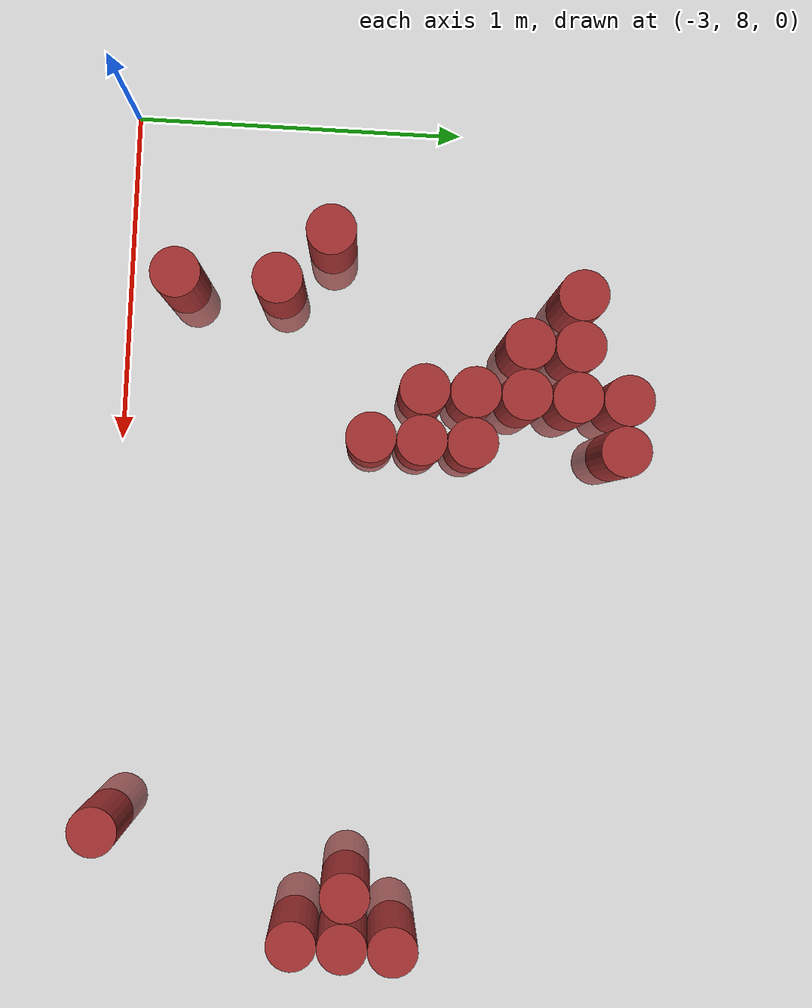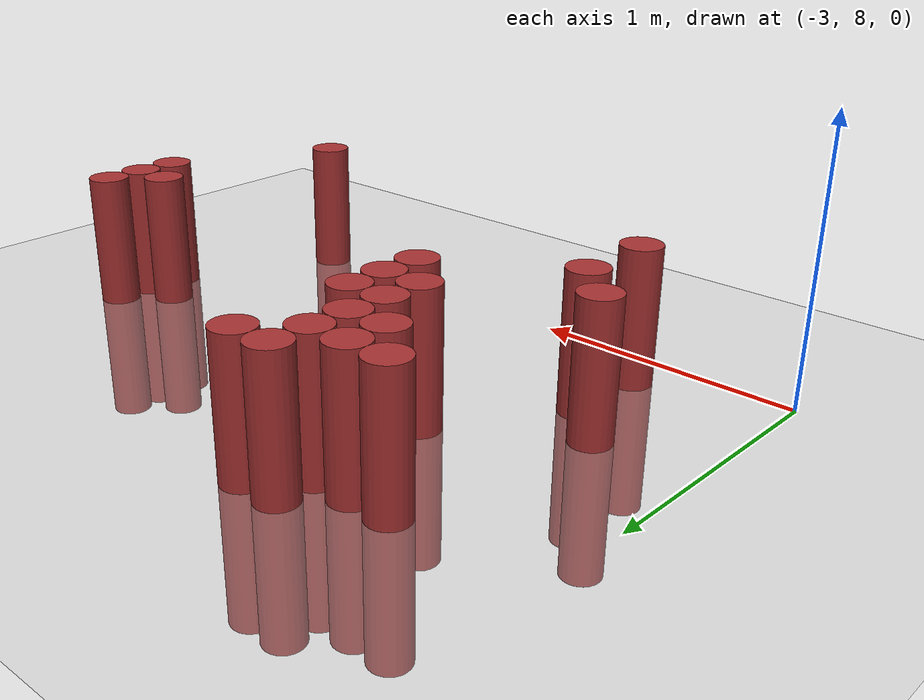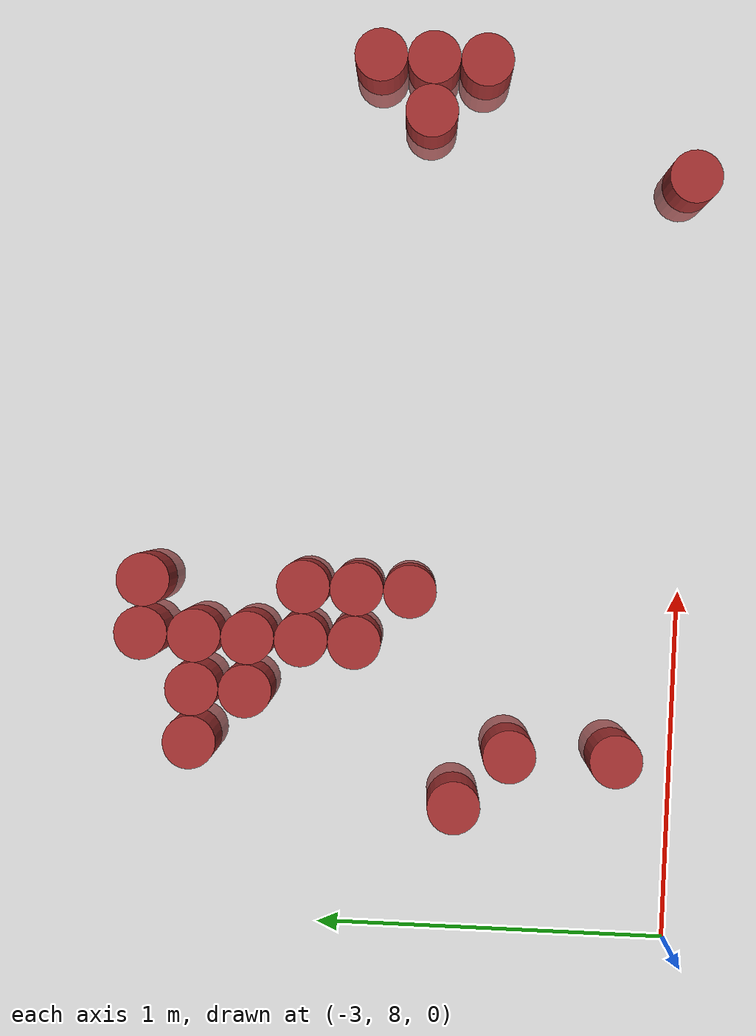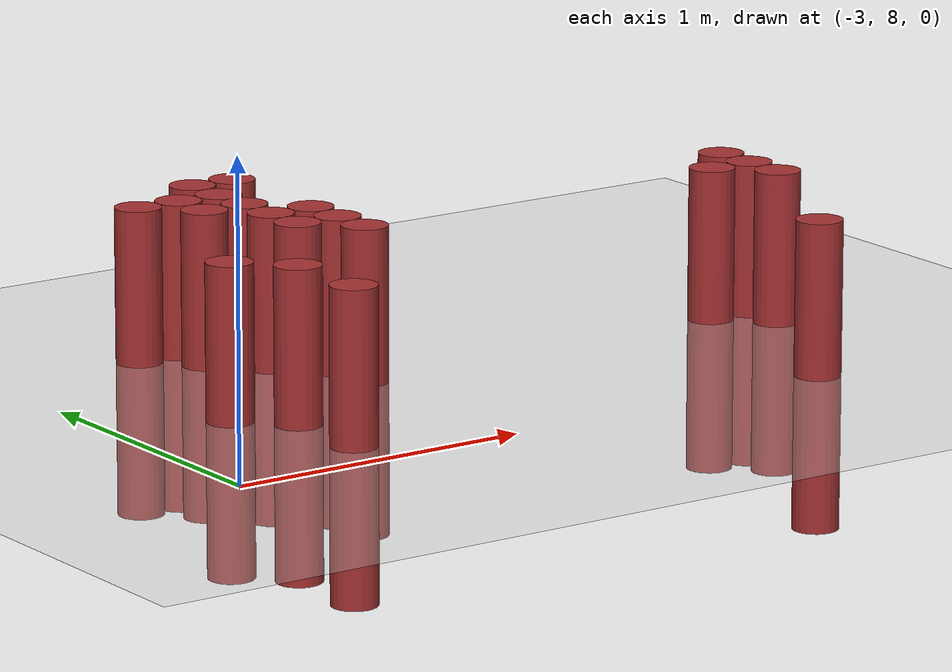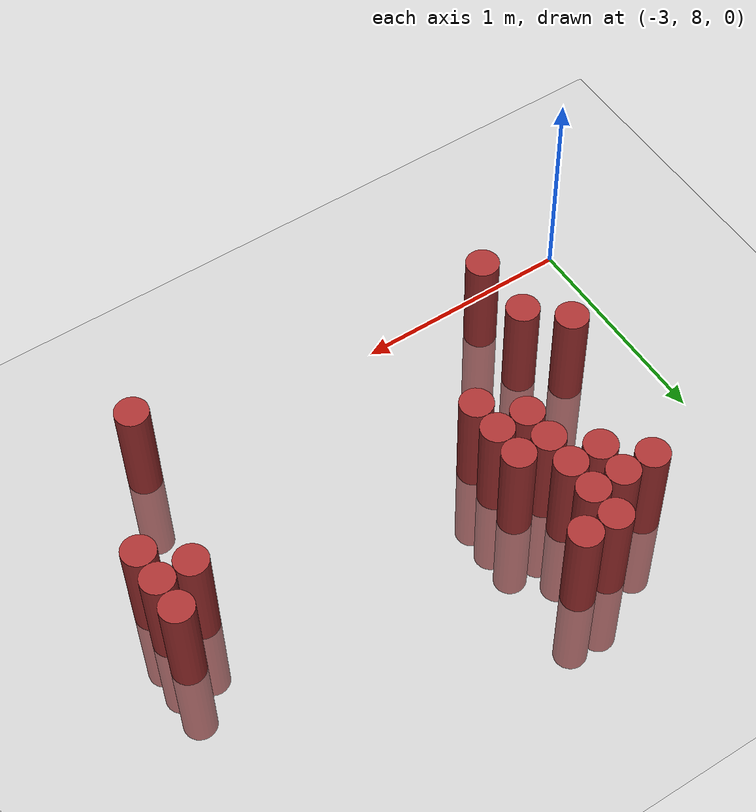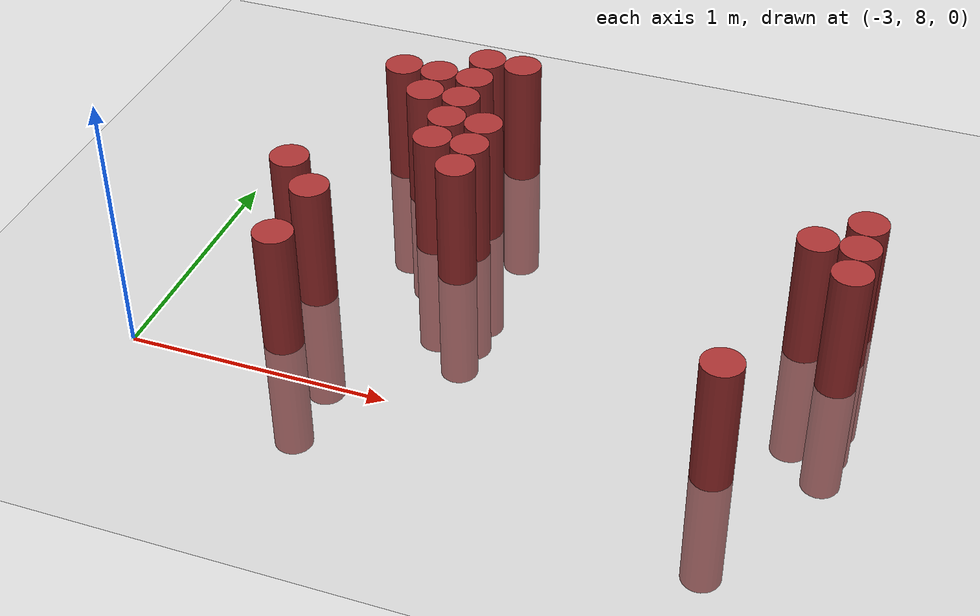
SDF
<sdf version="1.6">
 <world name="default">
  <model name="ground_plane">
   <static>1</static>
   <link name="link">
    <collision name="collision">
     <geometry><plane><normal>0 0 1</normal><size>100 100</size></plane></geometry>
     <surface><friction><ode><mu>100</mu><mu2>50</mu2></ode></friction></surface>
    </collision>
    <visual name="visual">
     <cast_shadows>0</cast_shadows>
     <geometry><plane><normal>0 0 1</normal><size>100 100</size></plane></geometry>
     <material>
      <script><uri>file://media/materials/scripts/gazebo.material</uri><name>Gazebo/Grey</name></script>
     </material>
    </visual>
   </link>
  </model>
  <model name="unit_cylinder_214">
   <static>1</static>
   <pose>-2.625000 8.625000 0.000000 0.000000 0.000000 0.000000</pose>
   <link name="link">
    <inertial>
     <mass>1</mass>
     <inertia><ixx>0.145833</ixx><ixy>0</ixy><ixz>0</ixz><iyy>0.145833</iyy><iyz>0</iyz><izz>0.125</izz></inertia>
    </inertial>
    <collision name="collision">
     <geometry><cylinder><radius>0.075000</radius><length>1</length></cylinder></geometry>
    </collision>
    <visual name="visual">
     <geometry><cylinder><radius>0.075000</radius><length>1</length></cylinder></geometry>
     <material>
      <ambient>0.648000 0.192000 0.192000 1</ambient>
      <diffuse>0.648000 0.192000 0.192000 1</diffuse>
     </material>
     <material>
      <script><name>Gazebo/Grey</name><uri>file://media/materials/scripts/gazebo.material</uri></script>
     </material>
    </visual>
    <sensor name="sensor_contact" type="contact"><contact><collision>collision</collision></contact></sensor>
   </link>
   <plugin filename="gz-sim-touchplugin-system" name="gz::sim::systems::TouchPlugin">
    <target>robot</target>
    <namespace>robot</namespace>
    <time>0.001</time>
    <enabled>true</enabled>
   </plugin>
  </model>
  <model name="unit_cylinder_217">
   <static>1</static>
   <pose>-2.475000 8.175000 0.000000 0.000000 0.000000 0.000000</pose>
   <link name="link">
    <inertial>
     <mass>1</mass>
     <inertia><ixx>0.145833</ixx><ixy>0</ixy><ixz>0</ixz><iyy>0.145833</iyy><iyz>0</iyz><izz>0.125</izz></inertia>
    </inertial>
    <collision name="collision">
     <geometry><cylinder><radius>0.075000</radius><length>1</length></cylinder></geometry>
    </collision>
    <visual name="visual">
     <geometry><cylinder><radius>0.075000</radius><length>1</length></cylinder></geometry>
     <material>
      <ambient>0.648000 0.192000 0.192000 1</ambient>
      <diffuse>0.648000 0.192000 0.192000 1</diffuse>
     </material>
     <material>
      <script><name>Gazebo/Grey</name><uri>file://media/materials/scripts/gazebo.material</uri></script>
     </material>
    </visual>
    <sensor name="sensor_contact" type="contact"><contact><collision>collision</collision></contact></sensor>
   </link>
   <plugin filename="gz-sim-touchplugin-system" name="gz::sim::systems::TouchPlugin">
    <target>robot</target>
    <namespace>robot</namespace>
    <time>0.001</time>
    <enabled>true</enabled>
   </plugin>
  </model>
  <model name="unit_cylinder_218">
   <static>1</static>
   <pose>-2.475000 8.475000 0.000000 0.000000 0.000000 0.000000</pose>
   <link name="link">
    <inertial>
     <mass>1</mass>
     <inertia><ixx>0.145833</ixx><ixy>0</ixy><ixz>0</ixz><iyy>0.145833</iyy><iyz>0</iyz><izz>0.125</izz></inertia>
    </inertial>
    <collision name="collision">
     <geometry><cylinder><radius>0.075000</radius><length>1</length></cylinder></geometry>
    </collision>
    <visual name="visual">
     <geometry><cylinder><radius>0.075000</radius><length>1</length></cylinder></geometry>
     <material>
      <ambient>0.648000 0.192000 0.192000 1</ambient>
      <diffuse>0.648000 0.192000 0.192000 1</diffuse>
     </material>
     <material>
      <script><name>Gazebo/Grey</name><uri>file://media/materials/scripts/gazebo.material</uri></script>
     </material>
    </visual>
    <sensor name="sensor_contact" type="contact"><contact><collision>collision</collision></contact></sensor>
   </link>
   <plugin filename="gz-sim-touchplugin-system" name="gz::sim::systems::TouchPlugin">
    <target>robot</target>
    <namespace>robot</namespace>
    <time>0.001</time>
    <enabled>true</enabled>
   </plugin>
  </model>
  <model name="unit_cylinder_219">
   <static>1</static>
   <pose>-2.475000 9.375000 0.000000 0.000000 0.000000 0.000000</pose>
   <link name="link">
    <inertial>
     <mass>1</mass>
     <inertia><ixx>0.145833</ixx><ixy>0</ixy><ixz>0</ixz><iyy>0.145833</iyy><iyz>0</iyz><izz>0.125</izz></inertia>
    </inertial>
    <collision name="collision">
     <geometry><cylinder><radius>0.075000</radius><length>1</length></cylinder></geometry>
    </collision>
    <visual name="visual">
     <geometry><cylinder><radius>0.075000</radius><length>1</length></cylinder></geometry>
     <material>
      <ambient>0.648000 0.192000 0.192000 1</ambient>
      <diffuse>0.648000 0.192000 0.192000 1</diffuse>
     </material>
     <material>
      <script><name>Gazebo/Grey</name><uri>file://media/materials/scripts/gazebo.material</uri></script>
     </material>
    </visual>
    <sensor name="sensor_contact" type="contact"><contact><collision>collision</collision></contact></sensor>
   </link>
   <plugin filename="gz-sim-touchplugin-system" name="gz::sim::systems::TouchPlugin">
    <target>robot</target>
    <namespace>robot</namespace>
    <time>0.001</time>
    <enabled>true</enabled>
   </plugin>
  </model>
  <model name="unit_cylinder_222">
   <static>1</static>
   <pose>-2.325000 9.225000 0.000000 0.000000 0.000000 0.000000</pose>
   <link name="link">
    <inertial>
     <mass>1</mass>
     <inertia><ixx>0.145833</ixx><ixy>0</ixy><ixz>0</ixz><iyy>0.145833</iyy><iyz>0</iyz><izz>0.125</izz></inertia>
    </inertial>
    <collision name="collision">
     <geometry><cylinder><radius>0.075000</radius><length>1</length></cylinder></geometry>
    </collision>
    <visual name="visual">
     <geometry><cylinder><radius>0.075000</radius><length>1</length></cylinder></geometry>
     <material>
      <ambient>0.648000 0.192000 0.192000 1</ambient>
      <diffuse>0.648000 0.192000 0.192000 1</diffuse>
     </material>
     <material>
      <script><name>Gazebo/Grey</name><uri>file://media/materials/scripts/gazebo.material</uri></script>
     </material>
    </visual>
    <sensor name="sensor_contact" type="contact"><contact><collision>collision</collision></contact></sensor>
   </link>
   <plugin filename="gz-sim-touchplugin-system" name="gz::sim::systems::TouchPlugin">
    <target>robot</target>
    <namespace>robot</namespace>
    <time>0.001</time>
    <enabled>true</enabled>
   </plugin>
  </model>
  <model name="unit_cylinder_223">
   <static>1</static>
   <pose>-2.325000 9.375000 0.000000 0.000000 0.000000 0.000000</pose>
   <link name="link">
    <inertial>
     <mass>1</mass>
     <inertia><ixx>0.145833</ixx><ixy>0</ixy><ixz>0</ixz><iyy>0.145833</iyy><iyz>0</iyz><izz>0.125</izz></inertia>
    </inertial>
    <collision name="collision">
     <geometry><cylinder><radius>0.075000</radius><length>1</length></cylinder></geometry>
    </collision>
    <visual name="visual">
     <geometry><cylinder><radius>0.075000</radius><length>1</length></cylinder></geometry>
     <material>
      <ambient>0.648000 0.192000 0.192000 1</ambient>
      <diffuse>0.648000 0.192000 0.192000 1</diffuse>
     </material>
     <material>
      <script><name>Gazebo/Grey</name><uri>file://media/materials/scripts/gazebo.material</uri></script>
     </material>
    </visual>
    <sensor name="sensor_contact" type="contact"><contact><collision>collision</collision></contact></sensor>
   </link>
   <plugin filename="gz-sim-touchplugin-system" name="gz::sim::systems::TouchPlugin">
    <target>robot</target>
    <namespace>robot</namespace>
    <time>0.001</time>
    <enabled>true</enabled>
   </plugin>
  </model>
  <model name="unit_cylinder_225">
   <static>1</static>
   <pose>-2.175000 8.925000 0.000000 0.000000 0.000000 0.000000</pose>
   <link name="link">
    <inertial>
     <mass>1</mass>
     <inertia><ixx>0.145833</ixx><ixy>0</ixy><ixz>0</ixz><iyy>0.145833</iyy><iyz>0</iyz><izz>0.125</izz></inertia>
    </inertial>
    <collision name="collision">
     <geometry><cylinder><radius>0.075000</radius><length>1</length></cylinder></geometry>
    </collision>
    <visual name="visual">
     <geometry><cylinder><radius>0.075000</radius><length>1</length></cylinder></geometry>
     <material>
      <ambient>0.648000 0.192000 0.192000 1</ambient>
      <diffuse>0.648000 0.192000 0.192000 1</diffuse>
     </material>
     <material>
      <script><name>Gazebo/Grey</name><uri>file://media/materials/scripts/gazebo.material</uri></script>
     </material>
    </visual>
    <sensor name="sensor_contact" type="contact"><contact><collision>collision</collision></contact></sensor>
   </link>
   <plugin filename="gz-sim-touchplugin-system" name="gz::sim::systems::TouchPlugin">
    <target>robot</target>
    <namespace>robot</namespace>
    <time>0.001</time>
    <enabled>true</enabled>
   </plugin>
  </model>
  <model name="unit_cylinder_226">
   <static>1</static>
   <pose>-2.175000 9.075000 0.000000 0.000000 0.000000 0.000000</pose>
   <link name="link">
    <inertial>
     <mass>1</mass>
     <inertia><ixx>0.145833</ixx><ixy>0</ixy><ixz>0</ixz><iyy>0.145833</iyy><iyz>0</iyz><izz>0.125</izz></inertia>
    </inertial>
    <collision name="collision">
     <geometry><cylinder><radius>0.075000</radius><length>1</length></cylinder></geometry>
    </collision>
    <visual name="visual">
     <geometry><cylinder><radius>0.075000</radius><length>1</length></cylinder></geometry>
     <material>
      <ambient>0.648000 0.192000 0.192000 1</ambient>
      <diffuse>0.648000 0.192000 0.192000 1</diffuse>
     </material>
     <material>
      <script><name>Gazebo/Grey</name><uri>file://media/materials/scripts/gazebo.material</uri></script>
     </material>
    </visual>
    <sensor name="sensor_contact" type="contact"><contact><collision>collision</collision></contact></sensor>
   </link>
   <plugin filename="gz-sim-touchplugin-system" name="gz::sim::systems::TouchPlugin">
    <target>robot</target>
    <namespace>robot</namespace>
    <time>0.001</time>
    <enabled>true</enabled>
   </plugin>
  </model>
  <model name="unit_cylinder_227">
   <static>1</static>
   <pose>-2.175000 9.225000 0.000000 0.000000 0.000000 0.000000</pose>
   <link name="link">
    <inertial>
     <mass>1</mass>
     <inertia><ixx>0.145833</ixx><ixy>0</ixy><ixz>0</ixz><iyy>0.145833</iyy><iyz>0</iyz><izz>0.125</izz></inertia>
    </inertial>
    <collision name="collision">
     <geometry><cylinder><radius>0.075000</radius><length>1</length></cylinder></geometry>
    </collision>
    <visual name="visual">
     <geometry><cylinder><radius>0.075000</radius><length>1</length></cylinder></geometry>
     <material>
      <ambient>0.648000 0.192000 0.192000 1</ambient>
      <diffuse>0.648000 0.192000 0.192000 1</diffuse>
     </material>
     <material>
      <script><name>Gazebo/Grey</name><uri>file://media/materials/scripts/gazebo.material</uri></script>
     </material>
    </visual>
    <sensor name="sensor_contact" type="contact"><contact><collision>collision</collision></contact></sensor>
   </link>
   <plugin filename="gz-sim-touchplugin-system" name="gz::sim::systems::TouchPlugin">
    <target>robot</target>
    <namespace>robot</namespace>
    <time>0.001</time>
    <enabled>true</enabled>
   </plugin>
  </model>
  <model name="unit_cylinder_228">
   <static>1</static>
   <pose>-2.175000 9.375000 0.000000 0.000000 0.000000 0.000000</pose>
   <link name="link">
    <inertial>
     <mass>1</mass>
     <inertia><ixx>0.145833</ixx><ixy>0</ixy><ixz>0</ixz><iyy>0.145833</iyy><iyz>0</iyz><izz>0.125</izz></inertia>
    </inertial>
    <collision name="collision">
     <geometry><cylinder><radius>0.075000</radius><length>1</length></cylinder></geometry>
    </collision>
    <visual name="visual">
     <geometry><cylinder><radius>0.075000</radius><length>1</length></cylinder></geometry>
     <material>
      <ambient>0.648000 0.192000 0.192000 1</ambient>
      <diffuse>0.648000 0.192000 0.192000 1</diffuse>
     </material>
     <material>
      <script><name>Gazebo/Grey</name><uri>file://media/materials/scripts/gazebo.material</uri></script>
     </material>
    </visual>
    <sensor name="sensor_contact" type="contact"><contact><collision>collision</collision></contact></sensor>
   </link>
   <plugin filename="gz-sim-touchplugin-system" name="gz::sim::systems::TouchPlugin">
    <target>robot</target>
    <namespace>robot</namespace>
    <time>0.001</time>
    <enabled>true</enabled>
   </plugin>
  </model>
  <model name="unit_cylinder_229">
   <static>1</static>
   <pose>-2.175000 9.525000 0.000000 0.000000 0.000000 0.000000</pose>
   <link name="link">
    <inertial>
     <mass>1</mass>
     <inertia><ixx>0.145833</ixx><ixy>0</ixy><ixz>0</ixz><iyy>0.145833</iyy><iyz>0</iyz><izz>0.125</izz></inertia>
    </inertial>
    <collision name="collision">
     <geometry><cylinder><radius>0.075000</radius><length>1</length></cylinder></geometry>
    </collision>
    <visual name="visual">
     <geometry><cylinder><radius>0.075000</radius><length>1</length></cylinder></geometry>
     <material>
      <ambient>0.648000 0.192000 0.192000 1</ambient>
      <diffuse>0.648000 0.192000 0.192000 1</diffuse>
     </material>
     <material>
      <script><name>Gazebo/Grey</name><uri>file://media/materials/scripts/gazebo.material</uri></script>
     </material>
    </visual>
    <sensor name="sensor_contact" type="contact"><contact><collision>collision</collision></contact></sensor>
   </link>
   <plugin filename="gz-sim-touchplugin-system" name="gz::sim::systems::TouchPlugin">
    <target>robot</target>
    <namespace>robot</namespace>
    <time>0.001</time>
    <enabled>true</enabled>
   </plugin>
  </model>
  <model name="unit_cylinder_231">
   <static>1</static>
   <pose>-2.025000 8.775000 0.000000 0.000000 0.000000 0.000000</pose>
   <link name="link">
    <inertial>
     <mass>1</mass>
     <inertia><ixx>0.145833</ixx><ixy>0</ixy><ixz>0</ixz><iyy>0.145833</iyy><iyz>0</iyz><izz>0.125</izz></inertia>
    </inertial>
    <collision name="collision">
     <geometry><cylinder><radius>0.075000</radius><length>1</length></cylinder></geometry>
    </collision>
    <visual name="visual">
     <geometry><cylinder><radius>0.075000</radius><length>1</length></cylinder></geometry>
     <material>
      <ambient>0.648000 0.192000 0.192000 1</ambient>
      <diffuse>0.648000 0.192000 0.192000 1</diffuse>
     </material>
     <material>
      <script><name>Gazebo/Grey</name><uri>file://media/materials/scripts/gazebo.material</uri></script>
     </material>
    </visual>
    <sensor name="sensor_contact" type="contact"><contact><collision>collision</collision></contact></sensor>
   </link>
   <plugin filename="gz-sim-touchplugin-system" name="gz::sim::systems::TouchPlugin">
    <target>robot</target>
    <namespace>robot</namespace>
    <time>0.001</time>
    <enabled>true</enabled>
   </plugin>
  </model>
  <model name="unit_cylinder_232">
   <static>1</static>
   <pose>-2.025000 8.925000 0.000000 0.000000 0.000000 0.000000</pose>
   <link name="link">
    <inertial>
     <mass>1</mass>
     <inertia><ixx>0.145833</ixx><ixy>0</ixy><ixz>0</ixz><iyy>0.145833</iyy><iyz>0</iyz><izz>0.125</izz></inertia>
    </inertial>
    <collision name="collision">
     <geometry><cylinder><radius>0.075000</radius><length>1</length></cylinder></geometry>
    </collision>
    <visual name="visual">
     <geometry><cylinder><radius>0.075000</radius><length>1</length></cylinder></geometry>
     <material>
      <ambient>0.648000 0.192000 0.192000 1</ambient>
      <diffuse>0.648000 0.192000 0.192000 1</diffuse>
     </material>
     <material>
      <script><name>Gazebo/Grey</name><uri>file://media/materials/scripts/gazebo.material</uri></script>
     </material>
    </visual>
    <sensor name="sensor_contact" type="contact"><contact><collision>collision</collision></contact></sensor>
   </link>
   <plugin filename="gz-sim-touchplugin-system" name="gz::sim::systems::TouchPlugin">
    <target>robot</target>
    <namespace>robot</namespace>
    <time>0.001</time>
    <enabled>true</enabled>
   </plugin>
  </model>
  <model name="unit_cylinder_233">
   <static>1</static>
   <pose>-2.025000 9.075000 0.000000 0.000000 0.000000 0.000000</pose>
   <link name="link">
    <inertial>
     <mass>1</mass>
     <inertia><ixx>0.145833</ixx><ixy>0</ixy><ixz>0</ixz><iyy>0.145833</iyy><iyz>0</iyz><izz>0.125</izz></inertia>
    </inertial>
    <collision name="collision">
     <geometry><cylinder><radius>0.075000</radius><length>1</length></cylinder></geometry>
    </collision>
    <visual name="visual">
     <geometry><cylinder><radius>0.075000</radius><length>1</length></cylinder></geometry>
     <material>
      <ambient>0.648000 0.192000 0.192000 1</ambient>
      <diffuse>0.648000 0.192000 0.192000 1</diffuse>
     </material>
     <material>
      <script><name>Gazebo/Grey</name><uri>file://media/materials/scripts/gazebo.material</uri></script>
     </material>
    </visual>
    <sensor name="sensor_contact" type="contact"><contact><collision>collision</collision></contact></sensor>
   </link>
   <plugin filename="gz-sim-touchplugin-system" name="gz::sim::systems::TouchPlugin">
    <target>robot</target>
    <namespace>robot</namespace>
    <time>0.001</time>
    <enabled>true</enabled>
   </plugin>
  </model>
  <model name="unit_cylinder_234">
   <static>1</static>
   <pose>-2.025000 9.525000 0.000000 0.000000 0.000000 0.000000</pose>
   <link name="link">
    <inertial>
     <mass>1</mass>
     <inertia><ixx>0.145833</ixx><ixy>0</ixy><ixz>0</ixz><iyy>0.145833</iyy><iyz>0</iyz><izz>0.125</izz></inertia>
    </inertial>
    <collision name="collision">
     <geometry><cylinder><radius>0.075000</radius><length>1</length></cylinder></geometry>
    </collision>
    <visual name="visual">
     <geometry><cylinder><radius>0.075000</radius><length>1</length></cylinder></geometry>
     <material>
      <ambient>0.648000 0.192000 0.192000 1</ambient>
      <diffuse>0.648000 0.192000 0.192000 1</diffuse>
     </material>
     <material>
      <script><name>Gazebo/Grey</name><uri>file://media/materials/scripts/gazebo.material</uri></script>
     </material>
    </visual>
    <sensor name="sensor_contact" type="contact"><contact><collision>collision</collision></contact></sensor>
   </link>
   <plugin filename="gz-sim-touchplugin-system" name="gz::sim::systems::TouchPlugin">
    <target>robot</target>
    <namespace>robot</namespace>
    <time>0.001</time>
    <enabled>true</enabled>
   </plugin>
  </model>
  <model name="unit_cylinder_247">
   <static>1</static>
   <pose>-0.825000 8.025000 0.000000 0.000000 0.000000 0.000000</pose>
   <link name="link">
    <inertial>
     <mass>1</mass>
     <inertia><ixx>0.145833</ixx><ixy>0</ixy><ixz>0</ixz><iyy>0.145833</iyy><iyz>0</iyz><izz>0.125</izz></inertia>
    </inertial>
    <collision name="collision">
     <geometry><cylinder><radius>0.075000</radius><length>1</length></cylinder></geometry>
    </collision>
    <visual name="visual">
     <geometry><cylinder><radius>0.075000</radius><length>1</length></cylinder></geometry>
     <material>
      <ambient>0.648000 0.192000 0.192000 1</ambient>
      <diffuse>0.648000 0.192000 0.192000 1</diffuse>
     </material>
     <material>
      <script><name>Gazebo/Grey</name><uri>file://media/materials/scripts/gazebo.material</uri></script>
     </material>
    </visual>
    <sensor name="sensor_contact" type="contact"><contact><collision>collision</collision></contact></sensor>
   </link>
   <plugin filename="gz-sim-touchplugin-system" name="gz::sim::systems::TouchPlugin">
    <target>robot</target>
    <namespace>robot</namespace>
    <time>0.001</time>
    <enabled>true</enabled>
   </plugin>
  </model>
  <model name="unit_cylinder_253">
   <static>1</static>
   <pose>-0.675000 8.775000 0.000000 0.000000 0.000000 0.000000</pose>
   <link name="link">
    <inertial>
     <mass>1</mass>
     <inertia><ixx>0.145833</ixx><ixy>0</ixy><ixz>0</ixz><iyy>0.145833</iyy><iyz>0</iyz><izz>0.125</izz></inertia>
    </inertial>
    <collision name="collision">
     <geometry><cylinder><radius>0.075000</radius><length>1</length></cylinder></geometry>
    </collision>
    <visual name="visual">
     <geometry><cylinder><radius>0.075000</radius><length>1</length></cylinder></geometry>
     <material>
      <ambient>0.648000 0.192000 0.192000 1</ambient>
      <diffuse>0.648000 0.192000 0.192000 1</diffuse>
     </material>
     <material>
      <script><name>Gazebo/Grey</name><uri>file://media/materials/scripts/gazebo.material</uri></script>
     </material>
    </visual>
    <sensor name="sensor_contact" type="contact"><contact><collision>collision</collision></contact></sensor>
   </link>
   <plugin filename="gz-sim-touchplugin-system" name="gz::sim::systems::TouchPlugin">
    <target>robot</target>
    <namespace>robot</namespace>
    <time>0.001</time>
    <enabled>true</enabled>
   </plugin>
  </model>
  <model name="unit_cylinder_261">
   <static>1</static>
   <pose>-0.525000 8.625000 0.000000 0.000000 0.000000 0.000000</pose>
   <link name="link">
    <inertial>
     <mass>1</mass>
     <inertia><ixx>0.145833</ixx><ixy>0</ixy><ixz>0</ixz><iyy>0.145833</iyy><iyz>0</iyz><izz>0.125</izz></inertia>
    </inertial>
    <collision name="collision">
     <geometry><cylinder><radius>0.075000</radius><length>1</length></cylinder></geometry>
    </collision>
    <visual name="visual">
     <geometry><cylinder><radius>0.075000</radius><length>1</length></cylinder></geometry>
     <material>
      <ambient>0.648000 0.192000 0.192000 1</ambient>
      <diffuse>0.648000 0.192000 0.192000 1</diffuse>
     </material>
     <material>
      <script><name>Gazebo/Grey</name><uri>file://media/materials/scripts/gazebo.material</uri></script>
     </material>
    </visual>
    <sensor name="sensor_contact" type="contact"><contact><collision>collision</collision></contact></sensor>
   </link>
   <plugin filename="gz-sim-touchplugin-system" name="gz::sim::systems::TouchPlugin">
    <target>robot</target>
    <namespace>robot</namespace>
    <time>0.001</time>
    <enabled>true</enabled>
   </plugin>
  </model>
  <model name="unit_cylinder_262">
   <static>1</static>
   <pose>-0.525000 8.775000 0.000000 0.000000 0.000000 0.000000</pose>
   <link name="link">
    <inertial>
     <mass>1</mass>
     <inertia><ixx>0.145833</ixx><ixy>0</ixy><ixz>0</ixz><iyy>0.145833</iyy><iyz>0</iyz><izz>0.125</izz></inertia>
    </inertial>
    <collision name="collision">
     <geometry><cylinder><radius>0.075000</radius><length>1</length></cylinder></geometry>
    </collision>
    <visual name="visual">
     <geometry><cylinder><radius>0.075000</radius><length>1</length></cylinder></geometry>
     <material>
      <ambient>0.648000 0.192000 0.192000 1</ambient>
      <diffuse>0.648000 0.192000 0.192000 1</diffuse>
     </material>
     <material>
      <script><name>Gazebo/Grey</name><uri>file://media/materials/scripts/gazebo.material</uri></script>
     </material>
    </visual>
    <sensor name="sensor_contact" type="contact"><contact><collision>collision</collision></contact></sensor>
   </link>
   <plugin filename="gz-sim-touchplugin-system" name="gz::sim::systems::TouchPlugin">
    <target>robot</target>
    <namespace>robot</namespace>
    <time>0.001</time>
    <enabled>true</enabled>
   </plugin>
  </model>
  <model name="unit_cylinder_263">
   <static>1</static>
   <pose>-0.525000 8.925000 0.000000 0.000000 0.000000 0.000000</pose>
   <link name="link">
    <inertial>
     <mass>1</mass>
     <inertia><ixx>0.145833</ixx><ixy>0</ixy><ixz>0</ixz><iyy>0.145833</iyy><iyz>0</iyz><izz>0.125</izz></inertia>
    </inertial>
    <collision name="collision">
     <geometry><cylinder><radius>0.075000</radius><length>1</length></cylinder></geometry>
    </collision>
    <visual name="visual">
     <geometry><cylinder><radius>0.075000</radius><length>1</length></cylinder></geometry>
     <material>
      <ambient>0.648000 0.192000 0.192000 1</ambient>
      <diffuse>0.648000 0.192000 0.192000 1</diffuse>
     </material>
     <material>
      <script><name>Gazebo/Grey</name><uri>file://media/materials/scripts/gazebo.material</uri></script>
     </material>
    </visual>
    <sensor name="sensor_contact" type="contact"><contact><collision>collision</collision></contact></sensor>
   </link>
   <plugin filename="gz-sim-touchplugin-system" name="gz::sim::systems::TouchPlugin">
    <target>robot</target>
    <namespace>robot</namespace>
    <time>0.001</time>
    <enabled>true</enabled>
   </plugin>
  </model>
 </world>
</sdf>
